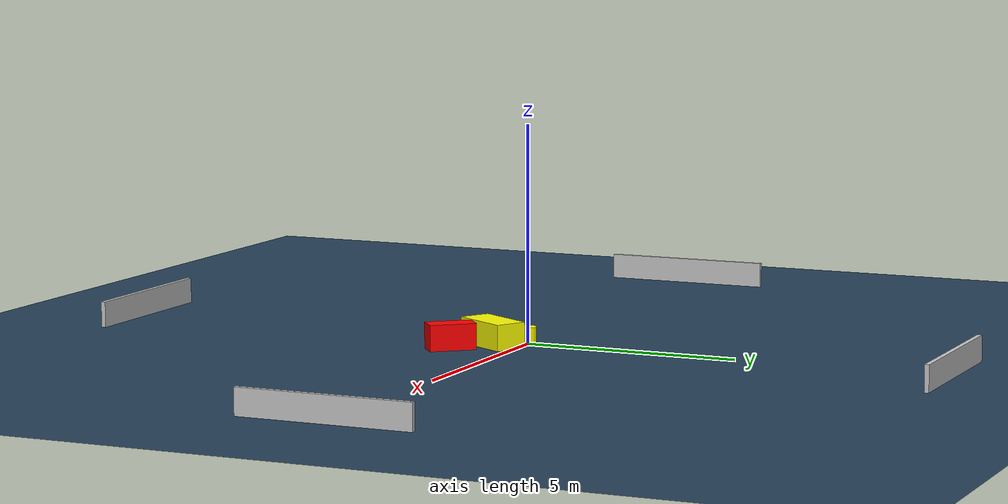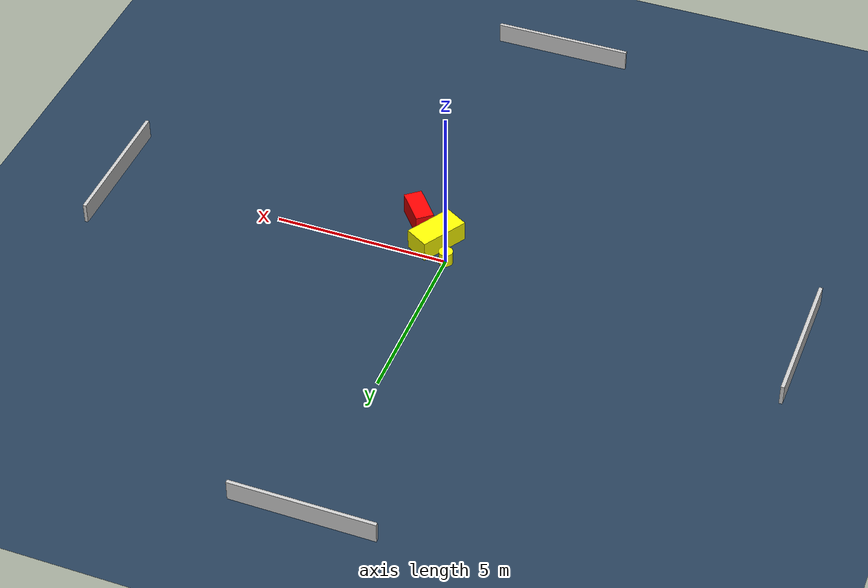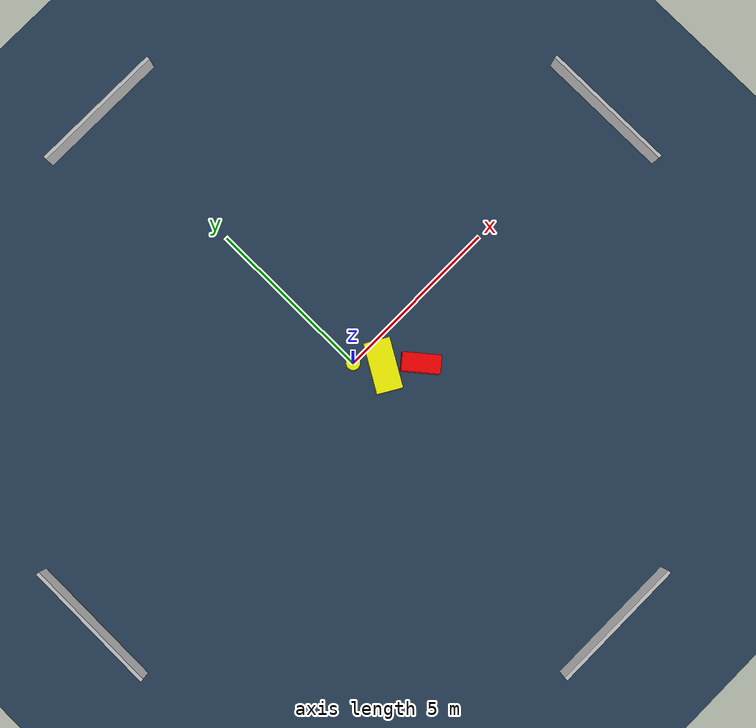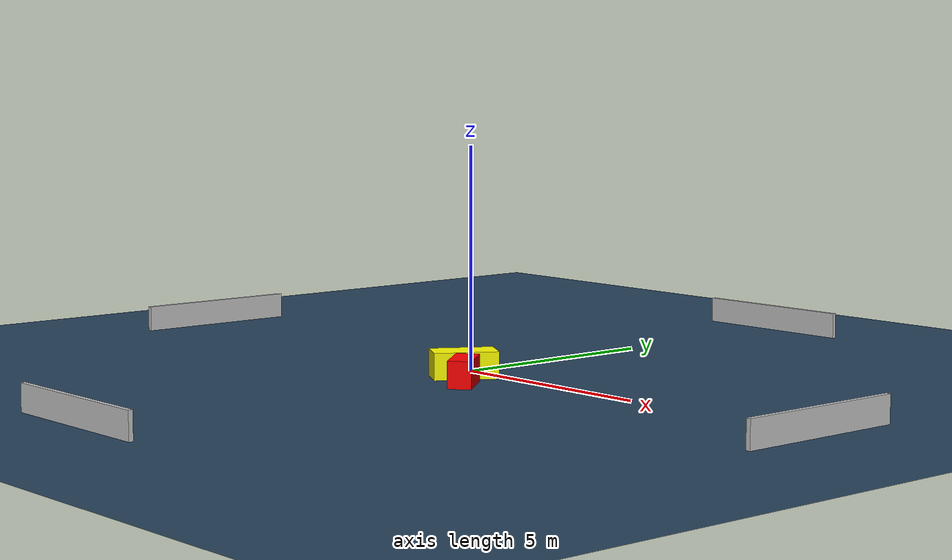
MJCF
<?xml version="1.0" ?>
<mujoco model="generated_environment">
  <option timestep="0.01" integrator="RK4" cone="elliptic"/>
  <default>
    <geom density="1"/>
  </default>
  <asset>
    <texture builtin="gradient" height="3072" name="skybox" rgb1="0.3 0.5 0.7" rgb2="0 0 0" type="skybox" width="512"/>
    <texture builtin="checker" height="300" name="groundplane" rgb1="0.2 0.3 0.4" rgb2="0.1 0.2 0.3" type="2d" width="300"/>
    <material name="groundplane" reflectance="0.2" texrepeat="5 5" texture="groundplane"/>
  </asset>
  <worldbody>
    <light dir="0 0 -1" directional="true" pos="0 0 1.5"/>
    <geom condim="3" friction="0.5 0.005 0.001" material="groundplane" name="floor" pos="0 0 0" size="0 0 0.05" type="plane"/>
    <body name="walls">
      <geom name="wall_1" condim="4" pos="-10.0 0.0 0.3" rgba="0.800000011920929 0.800000011920929 0.800000011920929 1.0" size="0.05 2.0 0.3" type="box"/>
      <geom name="wall_2" condim="4" pos="10.0 0.0 0.3" rgba="0.800000011920929 0.800000011920929 0.800000011920929 1.0" size="0.05 2.0 0.3" type="box"/>
      <geom name="wall_3" condim="4" pos="0.0 -10.0 0.3" rgba="0.800000011920929 0.800000011920929 0.800000011920929 1.0" size="2.0 0.05 0.3" type="box"/>
      <geom name="wall_4" condim="4" pos="0.0 10.0 0.3" rgba="0.800000011920929 0.800000011920929 0.800000011920929 1.0" size="2.0 0.05 0.3" type="box"/>
    </body>
    <body name="robot">
      <joint name="joint_x" type="slide" pos="0 0 0" axis="1 0 0"/>
      <joint name="joint_y" type="slide" pos="0 0 0" axis="0 1 0"/>
      <geom name="robot" type="cylinder" pos="0.0 0.0 0.2" size="0.2 0.2 0.0" mass="5.0" friction="1.0 0.005 0.0001" condim="4" rgba="1.0 1.0 0.0 1.0"/>
    </body>
    <body name="obstacle_1_movable">
      <geom name="obstacle_1_movable" condim="4" pos="0.5181634487400121 -0.6441983831793586 0.3" euler="0 0 59.64662748601317" friction="0.0 0.005 0.001" rgba="1.0 1.0 0.0 1.0" size="0.7143197480918844 0.37028262476604323 0.3" type="box" mass="0.1"/>
      <joint type="free"/>
    </body>
    <body name="obstacle_2_static">
      <geom name="obstacle_2_static" condim="4" pos="1.30680929050101 -1.3256677993393837 0.3" euler="0 0 129.6273320582345" friction="0.0 0.005 0.001" rgba="1.0 0.0 0.0 1.0" size="0.540283707599799 0.26046898305769844 0.3" type="box"/>
    </body>
  </worldbody>
  <actuator>
    <motor name="actuator_x" joint="joint_x" gear="1" ctrlrange="-1 1"/>
    <motor name="actuator_y" joint="joint_y" gear="1" ctrlrange="-1 1"/>
  </actuator>
</mujoco>
